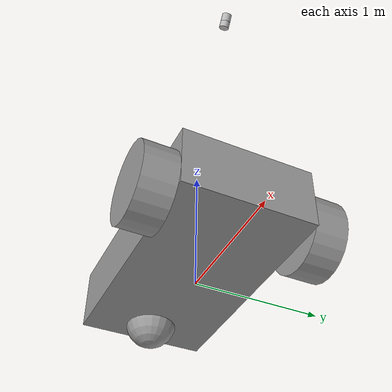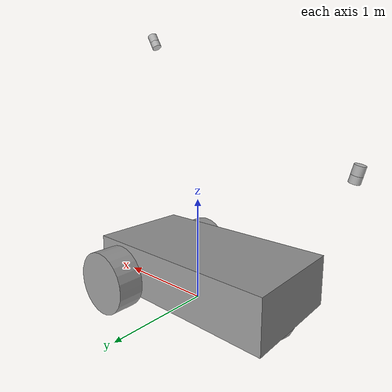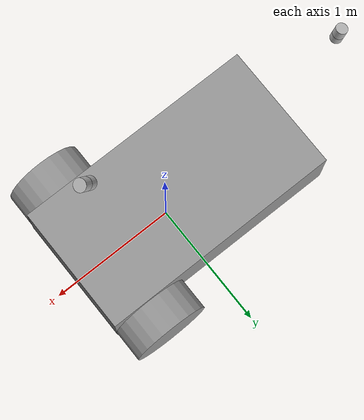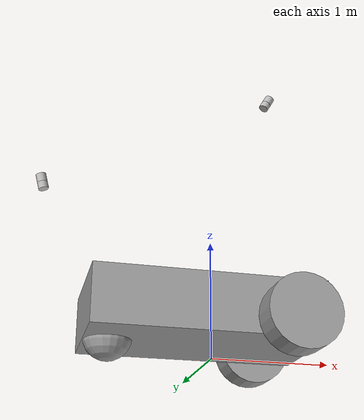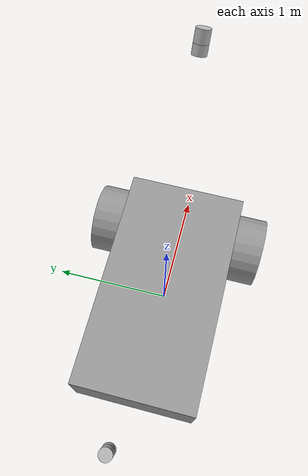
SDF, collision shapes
<?xml version='1.0'?>
<sdf version='1.7'>
  <model name='teste'>
    <link name='link_0'>
      <inertial>
        <mass>0.895719</mass>
        <inertia>
          <ixx>0.0913288</ixx>
          <ixy>0</ixy>
          <ixz>0</ixz>
          <iyy>0.284552</iyy>
          <iyz>0</iyz>
          <izz>0.34251</izz>
        </inertia>
        <pose>0 0 0 0 -0 0</pose>
      </inertial>
      <pose>-0.105458 0.002643 0.335385 0 -0 0</pose>
      <gravity>1</gravity>
      <self_collide>0</self_collide>
      <kinematic>0</kinematic>
      <enable_wind>0</enable_wind>
      <visual name='visual'>
        <pose>0 0 0 0 -0 0</pose>
        <geometry>
          <box>
            <size>1.89437 1 0.472797</size>
          </box>
        </geometry>
        <material>
          <lighting>1</lighting>
          <script>
            <uri>file://media/materials/scripts/gazebo.material</uri>
            <name>Gazebo/Grey</name>
          </script>
          <shader type='pixel'>
            <normal_map>__default__</normal_map>
          </shader>
          <ambient>0.3 0.3 0.3 1</ambient>
          <diffuse>0.7 0.7 0.7 1</diffuse>
          <specular>0.01 0.01 0.01 1</specular>
          <emissive>0 0 0 1</emissive>
        </material>
        <transparency>0</transparency>
        <cast_shadows>1</cast_shadows>
      </visual>
      <collision name='collision'>
        <laser_retro>0</laser_retro>
        <max_contacts>10</max_contacts>
        <pose>0 0 0 0 -0 0</pose>
        <geometry>
          <box>
            <size>1.89437 1 0.472797</size>
          </box>
        </geometry>
        <surface>
          <friction>
            <ode>
              <mu>1</mu>
              <mu2>1</mu2>
              <fdir1>0 0 0</fdir1>
              <slip1>0</slip1>
              <slip2>0</slip2>
            </ode>
            <torsional>
              <coefficient>1</coefficient>
              <patch_radius>0</patch_radius>
              <surface_radius>0</surface_radius>
              <use_patch_radius>1</use_patch_radius>
              <ode>
                <slip>0</slip>
              </ode>
            </torsional>
          </friction>
          <bounce>
            <restitution_coefficient>0</restitution_coefficient>
            <threshold>1e+06</threshold>
          </bounce>
          <contact>
            <collide_without_contact>0</collide_without_contact>
            <collide_without_contact_bitmask>1</collide_without_contact_bitmask>
            <collide_bitmask>1</collide_bitmask>
            <ode>
              <soft_cfm>0</soft_cfm>
              <soft_erp>0.2</soft_erp>
              <kp>1e+13</kp>
              <kd>1</kd>
              <max_vel>0.01</max_vel>
              <min_depth>0</min_depth>
            </ode>
            <bullet>
              <split_impulse>1</split_impulse>
              <split_impulse_penetration_threshold>-0.01</split_impulse_penetration_threshold>
              <soft_cfm>0</soft_cfm>
              <soft_erp>0.2</soft_erp>
              <kp>1e+13</kp>
              <kd>1</kd>
            </bullet>
          </contact>
        </surface>
      </collision>
    </link>
    <link name='link_1'>
      <inertial>
        <mass>1</mass>
        <inertia>
          <ixx>0.145833</ixx>
          <ixy>0</ixy>
          <ixz>0</ixz>
          <iyy>0.145833</iyy>
          <iyz>0</iyz>
          <izz>0.125</izz>
        </inertia>
        <pose>0 0 0 0 -0 0</pose>
      </inertial>
      <pose>0.541725 -0.622386 0.235385 1.5707 -0 0</pose>
      <gravity>1</gravity>
      <self_collide>0</self_collide>
      <kinematic>0</kinematic>
      <enable_wind>0</enable_wind>
      <visual name='visual'>
        <pose>0 0 0 0 -0 0</pose>
        <geometry>
          <cylinder>
            <radius>0.3</radius>
            <length>0.25</length>
          </cylinder>
        </geometry>
        <material>
          <lighting>1</lighting>
          <script>
            <uri>file://media/materials/scripts/gazebo.material</uri>
            <name>Gazebo/Grey</name>
          </script>
          <shader type='pixel'>
            <normal_map>__default__</normal_map>
          </shader>
          <ambient>0.3 0.3 0.3 1</ambient>
          <diffuse>0.7 0.7 0.7 1</diffuse>
          <specular>0.01 0.01 0.01 1</specular>
          <emissive>0 0 0 1</emissive>
        </material>
        <transparency>0</transparency>
        <cast_shadows>1</cast_shadows>
      </visual>
      <collision name='collision'>
        <laser_retro>0</laser_retro>
        <max_contacts>10</max_contacts>
        <pose>0 0 0 0 -0 0</pose>
        <geometry>
          <cylinder>
            <radius>0.3</radius>
            <length>0.25</length>
          </cylinder>
        </geometry>
        <surface>
          <friction>
            <ode>
              <mu>1</mu>
              <mu2>1</mu2>
              <fdir1>0 0 0</fdir1>
              <slip1>0</slip1>
              <slip2>0</slip2>
            </ode>
            <torsional>
              <coefficient>1</coefficient>
              <patch_radius>0</patch_radius>
              <surface_radius>0</surface_radius>
              <use_patch_radius>1</use_patch_radius>
              <ode>
                <slip>0</slip>
              </ode>
            </torsional>
          </friction>
          <bounce>
            <restitution_coefficient>0</restitution_coefficient>
            <threshold>1e+06</threshold>
          </bounce>
          <contact>
            <collide_without_contact>0</collide_without_contact>
            <collide_without_contact_bitmask>1</collide_without_contact_bitmask>
            <collide_bitmask>1</collide_bitmask>
            <ode>
              <soft_cfm>0</soft_cfm>
              <soft_erp>0.2</soft_erp>
              <kp>1e+13</kp>
              <kd>1</kd>
              <max_vel>0.01</max_vel>
              <min_depth>0</min_depth>
            </ode>
            <bullet>
              <split_impulse>1</split_impulse>
              <split_impulse_penetration_threshold>-0.01</split_impulse_penetration_threshold>
              <soft_cfm>0</soft_cfm>
              <soft_erp>0.2</soft_erp>
              <kp>1e+13</kp>
              <kd>1</kd>
            </bullet>
          </contact>
        </surface>
      </collision>
    </link>
    <link name='link_1_clone'>
      <inertial>
        <mass>1</mass>
        <inertia>
          <ixx>0.145833</ixx>
          <ixy>0</ixy>
          <ixz>0</ixz>
          <iyy>0.145833</iyy>
          <iyz>0</iyz>
          <izz>0.125</izz>
        </inertia>
        <pose>0 0 0 0 -0 0</pose>
      </inertial>
      <pose>0.541725 0.627672 0.235385 1.5707 -0 0</pose>
      <gravity>1</gravity>
      <self_collide>0</self_collide>
      <kinematic>0</kinematic>
      <enable_wind>0</enable_wind>
      <visual name='visual'>
        <pose>0 0 0 0 -0 0</pose>
        <geometry>
          <cylinder>
            <radius>0.3</radius>
            <length>0.25</length>
          </cylinder>
        </geometry>
        <material>
          <lighting>1</lighting>
          <script>
            <uri>file://media/materials/scripts/gazebo.material</uri>
            <name>Gazebo/Grey</name>
          </script>
          <shader type='pixel'>
            <normal_map>__default__</normal_map>
          </shader>
          <ambient>0.3 0.3 0.3 1</ambient>
          <diffuse>0.7 0.7 0.7 1</diffuse>
          <specular>0.01 0.01 0.01 1</specular>
          <emissive>0 0 0 1</emissive>
        </material>
        <transparency>0</transparency>
        <cast_shadows>1</cast_shadows>
      </visual>
      <collision name='collision'>
        <laser_retro>0</laser_retro>
        <max_contacts>10</max_contacts>
        <pose>0 0 0 0 -0 0</pose>
        <geometry>
          <cylinder>
            <radius>0.3</radius>
            <length>0.25</length>
          </cylinder>
        </geometry>
        <surface>
          <friction>
            <ode>
              <mu>1</mu>
              <mu2>1</mu2>
              <fdir1>0 0 0</fdir1>
              <slip1>0</slip1>
              <slip2>0</slip2>
            </ode>
            <torsional>
              <coefficient>1</coefficient>
              <patch_radius>0</patch_radius>
              <surface_radius>0</surface_radius>
              <use_patch_radius>1</use_patch_radius>
              <ode>
                <slip>0</slip>
              </ode>
            </torsional>
          </friction>
          <bounce>
            <restitution_coefficient>0</restitution_coefficient>
            <threshold>1e+06</threshold>
          </bounce>
          <contact>
            <collide_without_contact>0</collide_without_contact>
            <collide_without_contact_bitmask>1</collide_without_contact_bitmask>
            <collide_bitmask>1</collide_bitmask>
            <ode>
              <soft_cfm>0</soft_cfm>
              <soft_erp>0.2</soft_erp>
              <kp>1e+13</kp>
              <kd>1</kd>
              <max_vel>0.01</max_vel>
              <min_depth>0</min_depth>
            </ode>
            <bullet>
              <split_impulse>1</split_impulse>
              <split_impulse_penetration_threshold>-0.01</split_impulse_penetration_threshold>
              <soft_cfm>0</soft_cfm>
              <soft_erp>0.2</soft_erp>
              <kp>1e+13</kp>
              <kd>1</kd>
            </bullet>
          </contact>
        </surface>
      </collision>
    </link>
    <link name='link_2'>
      <inertial>
        <mass>1</mass>
        <inertia>
          <ixx>0.1</ixx>
          <ixy>0</ixy>
          <ixz>0</ixz>
          <iyy>0.1</iyy>
          <iyz>0</iyz>
          <izz>0.1</izz>
        </inertia>
        <pose>0 0 0 0 -0 0</pose>
      </inertial>
      <pose>-0.852641 0.002643 0.135385 0 -0 0</pose>
      <gravity>1</gravity>
      <self_collide>0</self_collide>
      <kinematic>0</kinematic>
      <enable_wind>0</enable_wind>
      <visual name='visual'>
        <pose>0 0 0 0 -0 0</pose>
        <geometry>
          <sphere>
            <radius>0.2</radius>
          </sphere>
        </geometry>
        <material>
          <lighting>1</lighting>
          <script>
            <uri>file://media/materials/scripts/gazebo.material</uri>
            <name>Gazebo/Grey</name>
          </script>
          <shader type='pixel'>
            <normal_map>__default__</normal_map>
          </shader>
          <ambient>0.3 0.3 0.3 1</ambient>
          <diffuse>0.7 0.7 0.7 1</diffuse>
          <specular>0.01 0.01 0.01 1</specular>
          <emissive>0 0 0 1</emissive>
        </material>
        <transparency>0</transparency>
        <cast_shadows>1</cast_shadows>
      </visual>
      <collision name='collision'>
        <laser_retro>0</laser_retro>
        <max_contacts>10</max_contacts>
        <pose>0 0 0 0 -0 0</pose>
        <geometry>
          <sphere>
            <radius>0.2</radius>
          </sphere>
        </geometry>
        <surface>
          <friction>
            <ode>
              <mu>1</mu>
              <mu2>1</mu2>
              <fdir1>0 0 0</fdir1>
              <slip1>0</slip1>
              <slip2>0</slip2>
            </ode>
            <torsional>
              <coefficient>1</coefficient>
              <patch_radius>0</patch_radius>
              <surface_radius>0</surface_radius>
              <use_patch_radius>1</use_patch_radius>
              <ode>
                <slip>0</slip>
              </ode>
            </torsional>
          </friction>
          <bounce>
            <restitution_coefficient>0</restitution_coefficient>
            <threshold>1e+06</threshold>
          </bounce>
          <contact>
            <collide_without_contact>0</collide_without_contact>
            <collide_without_contact_bitmask>1</collide_without_contact_bitmask>
            <collide_bitmask>1</collide_bitmask>
            <ode>
              <soft_cfm>0</soft_cfm>
              <soft_erp>0.2</soft_erp>
              <kp>1e+13</kp>
              <kd>1</kd>
              <max_vel>0.01</max_vel>
              <min_depth>0</min_depth>
            </ode>
            <bullet>
              <split_impulse>1</split_impulse>
              <split_impulse_penetration_threshold>-0.01</split_impulse_penetration_threshold>
              <soft_cfm>0</soft_cfm>
              <soft_erp>0.2</soft_erp>
              <kp>1e+13</kp>
              <kd>1</kd>
            </bullet>
          </contact>
        </surface>
      </collision>
    </link>
    <model name='my_velodyne'>
      <frame name='velodyne::__model__' attached_to='velodyne::base'>
        <pose relative_to='__model__'>0.5275 0.001 2.419 0 0.52 0</pose>
      </frame>
      <link name='velodyne::base'>
        <pose>0.542076 0.001 2.44446 0 0.52 0</pose>
        <inertial>
          <mass>1.2</mass>
          <inertia>
            <ixx>0.00108747</ixx>
            <iyy>0.00108747</iyy>
            <izz>0.00109244</izz>
            <ixy>0</ixy>
            <ixz>0</ixz>
            <iyz>0</iyz>
          </inertia>
          <pose>0 0 0 0 -0 0</pose>
        </inertial>
        <collision name='base_collision'>
          <geometry>
            <cylinder>
              <radius>0.04267</radius>
              <length>0.05867</length>
            </cylinder>
          </geometry>
          <max_contacts>10</max_contacts>
          <surface>
            <contact>
              <ode/>
            </contact>
            <bounce/>
            <friction>
              <torsional>
                <ode/>
              </torsional>
              <ode/>
            </friction>
          </surface>
        </collision>
        <visual name='base_visual'>
          <pose>0 0 -0.029335 0 -0 0</pose>
          <geometry>
            <mesh>
              <uri>model://velodyne_hdl32/meshes/velodyne_base.dae</uri>
            </mesh>
          </geometry>
        </visual>
        <kinematic>1</kinematic>
        <self_collide>0</self_collide>
        <enable_wind>0</enable_wind>
      </link>
      <link name='velodyne::top'>
        <pose>0.57493 0.001 2.50184 0 0.52 0</pose>
        <inertial>
          <mass>0.1</mass>
          <inertia>
            <ixx>9.0623e-05</ixx>
            <iyy>9.0623e-05</iyy>
            <izz>9.1036e-05</izz>
            <ixy>0</ixy>
            <ixz>0</ixz>
            <iyz>0</iyz>
          </inertia>
          <pose>0 0 0 0 -0 0</pose>
        </inertial>
        <collision name='top_collision'>
          <geometry>
            <cylinder>
              <radius>0.04267</radius>
              <length>0.07357</length>
            </cylinder>
          </geometry>
          <max_contacts>10</max_contacts>
          <surface>
            <contact>
              <ode/>
            </contact>
            <bounce/>
            <friction>
              <torsional>
                <ode/>
              </torsional>
              <ode/>
            </friction>
          </surface>
        </collision>
        <visual name='top_visual'>
          <pose>0 0 -0.037679 0 -0 1.5707</pose>
          <geometry>
            <mesh>
              <uri>model://velodyne_hdl32/meshes/velodyne_top.dae</uri>
            </mesh>
          </geometry>
        </visual>
        <sensor name='sensor' type='ray'>
          <pose>0 0 -0.004645 1.5707 -0 0</pose>
          <visualize>1</visualize>
          <update_rate>30</update_rate>
          <ray>
            <noise>
              <type>gaussian</type>
              <mean>0</mean>
              <stddev>0.02</stddev>
            </noise>
            <scan>
              <horizontal>
                <samples>16</samples>
                <resolution>1</resolution>
                <min_angle>-0.535292</min_angle>
                <max_angle>0.186227</max_angle>
              </horizontal>
              <vertical>
                <samples>1</samples>
                <min_angle>0</min_angle>
                <max_angle>0</max_angle>
              </vertical>
            </scan>
            <range>
              <min>0.1</min>
              <max>70</max>
              <resolution>0.02</resolution>
            </range>
          </ray>
        </sensor>
        <self_collide>0</self_collide>
        <enable_wind>0</enable_wind>
        <kinematic>0</kinematic>
      </link>
      <joint name='velodyne::joint' type='revolute'>
        <pose>0 0 -0.036785 0 -0 0</pose>
        <parent>velodyne::base</parent>
        <child>velodyne::top</child>
        <axis>
          <xyz>0 0 1</xyz>
          <limit>
            <lower>-1e+16</lower>
            <upper>1e+16</upper>
          </limit>
          <dynamics>
            <spring_reference>0</spring_reference>
            <spring_stiffness>0</spring_stiffness>
          </dynamics>
        </axis>
      </joint>
      <plugin name='velodyne_control' filename='libvelodyne_plugin.so'>
        <velocity>25</velocity>
      </plugin>
      <pose>0 0 0 0 -0 0</pose>
    </model>
    <model name='my_velodyne2'>
      <frame name='velodyne::__model__' attached_to='velodyne::base'>
        <pose relative_to='__model__'>-1.435 0 1.355 0 0.25 -3.14159</pose>
      </frame>
      <link name='velodyne::base'>
        <pose>-1.44226 -0 1.38342 0 0.25 -3.14159</pose>
        <inertial>
          <mass>1.2</mass>
          <inertia>
            <ixx>0.00108747</ixx>
            <iyy>0.00108747</iyy>
            <izz>0.00109244</izz>
            <ixy>0</ixy>
            <ixz>0</ixz>
            <iyz>0</iyz>
          </inertia>
          <pose>0 0 0 0 -0 0</pose>
        </inertial>
        <collision name='base_collision'>
          <geometry>
            <cylinder>
              <radius>0.04267</radius>
              <length>0.05867</length>
            </cylinder>
          </geometry>
          <max_contacts>10</max_contacts>
          <surface>
            <contact>
              <ode/>
            </contact>
            <bounce/>
            <friction>
              <torsional>
                <ode/>
              </torsional>
              <ode/>
            </friction>
          </surface>
        </collision>
        <visual name='base_visual'>
          <pose>0 0 -0.029335 0 -0 0</pose>
          <geometry>
            <mesh>
              <uri>model://velodyne_hdl32/meshes/velodyne_base.dae</uri>
            </mesh>
          </geometry>
        </visual>
        <kinematic>1</kinematic>
        <self_collide>0</self_collide>
        <enable_wind>0</enable_wind>
      </link>
      <link name='velodyne::top'>
        <pose>-1.45862 -0 1.44749 0 0.25 -3.14159</pose>
        <inertial>
          <mass>0.1</mass>
          <inertia>
            <ixx>9.0623e-05</ixx>
            <iyy>9.0623e-05</iyy>
            <izz>9.1036e-05</izz>
            <ixy>0</ixy>
            <ixz>0</ixz>
            <iyz>0</iyz>
          </inertia>
          <pose>0 0 0 0 -0 0</pose>
        </inertial>
        <collision name='top_collision'>
          <geometry>
            <cylinder>
              <radius>0.04267</radius>
              <length>0.07357</length>
            </cylinder>
          </geometry>
          <max_contacts>10</max_contacts>
          <surface>
            <contact>
              <ode/>
            </contact>
            <bounce/>
            <friction>
              <torsional>
                <ode/>
              </torsional>
              <ode/>
            </friction>
          </surface>
        </collision>
        <visual name='top_visual'>
          <pose>0 0 -0.037679 0 -0 1.5707</pose>
          <geometry>
            <mesh>
              <uri>model://velodyne_hdl32/meshes/velodyne_top.dae</uri>
            </mesh>
          </geometry>
        </visual>
        <sensor name='sensor' type='ray'>
          <pose>0 0 -0.004645 1.5707 -0 0</pose>
          <visualize>1</visualize>
          <update_rate>30</update_rate>
          <ray>
            <noise>
              <type>gaussian</type>
              <mean>0</mean>
              <stddev>0.02</stddev>
            </noise>
            <scan>
              <horizontal>
                <samples>16</samples>
                <resolution>1</resolution>
                <min_angle>-0.535292</min_angle>
                <max_angle>0.186227</max_angle>
              </horizontal>
              <vertical>
                <samples>1</samples>
                <min_angle>0</min_angle>
                <max_angle>0</max_angle>
              </vertical>
            </scan>
            <range>
              <min>0.1</min>
              <max>70</max>
              <resolution>0.02</resolution>
            </range>
          </ray>
        </sensor>
        <self_collide>0</self_collide>
        <enable_wind>0</enable_wind>
        <kinematic>0</kinematic>
      </link>
      <joint name='velodyne::joint' type='revolute'>
        <pose>0 0 -0.036785 0 -0 0</pose>
        <parent>velodyne::base</parent>
        <child>velodyne::top</child>
        <axis>
          <xyz>0 0 1</xyz>
          <limit>
            <lower>-1e+16</lower>
            <upper>1e+16</upper>
          </limit>
          <dynamics>
            <spring_reference>0</spring_reference>
            <spring_stiffness>0</spring_stiffness>
          </dynamics>
        </axis>
      </joint>
      <plugin name='velodyne_control' filename='libvelodyne_plugin.so'>
        <velocity>25</velocity>
      </plugin>
      <pose>0 0 0 0 -0 0</pose>
    </model>
    <joint name='link_0_JOINT_0_0' type='revolute'>
      <parent>link_0</parent>
      <child>my_velodyne2::velodyne::base</child>
      <pose>0 0 0 0 -0 0</pose>
      <axis>
        <xyz>1 0 0</xyz>
        <limit>
          <lower>-1.79769e+308</lower>
          <upper>1.79769e+308</upper>
          <effort>-1</effort>
          <velocity>-1</velocity>
        </limit>
        <dynamics>
          <spring_reference>0</spring_reference>
          <spring_stiffness>0</spring_stiffness>
          <damping>0</damping>
        </dynamics>
      </axis>
      <physics>
        <ode>
          <limit>
            <cfm>0</cfm>
            <erp>0.2</erp>
          </limit>
          <suspension>
            <cfm>0</cfm>
            <erp>0.2</erp>
          </suspension>
        </ode>
      </physics>
    </joint>
    <joint name='link_0_JOINT_0' type='revolute'>
      <parent>link_0</parent>
      <child>link_1_clone</child>
      <pose>0 0 0 0 -0 0</pose>
      <axis>
        <xyz>0 0 1</xyz>
        <limit>
          <lower>-1.79769e+308</lower>
          <upper>1.79769e+308</upper>
          <effort>-1</effort>
          <velocity>-1</velocity>
        </limit>
        <dynamics>
          <spring_reference>0</spring_reference>
          <spring_stiffness>0</spring_stiffness>
          <damping>0</damping>
          <friction>0</friction>
        </dynamics>
      </axis>
      <physics>
        <ode>
          <limit>
            <cfm>0</cfm>
            <erp>0.2</erp>
          </limit>
          <suspension>
            <cfm>0</cfm>
            <erp>0.2</erp>
          </suspension>
        </ode>
      </physics>
    </joint>
    <joint name='link_0_JOINT_1_0' type='revolute'>
      <parent>link_0</parent>
      <child>my_velodyne::velodyne::base</child>
      <pose>0 0 0 0 -0 0</pose>
      <axis>
        <xyz>1 0 0</xyz>
        <limit>
          <lower>-1.79769e+308</lower>
          <upper>1.79769e+308</upper>
          <effort>-1</effort>
          <velocity>-1</velocity>
        </limit>
        <dynamics>
          <spring_reference>0</spring_reference>
          <spring_stiffness>0</spring_stiffness>
          <damping>0</damping>
        </dynamics>
      </axis>
      <physics>
        <ode>
          <limit>
            <cfm>0</cfm>
            <erp>0.2</erp>
          </limit>
          <suspension>
            <cfm>0</cfm>
            <erp>0.2</erp>
          </suspension>
        </ode>
      </physics>
    </joint>
    <joint name='link_0_JOINT_1' type='revolute'>
      <parent>link_0</parent>
      <child>link_1</child>
      <pose>0 0 0 0 -0 0</pose>
      <axis>
        <xyz>0 0 1</xyz>
        <limit>
          <lower>-1.79769e+308</lower>
          <upper>1.79769e+308</upper>
          <effort>-1</effort>
          <velocity>-1</velocity>
        </limit>
        <dynamics>
          <spring_reference>0</spring_reference>
          <spring_stiffness>0</spring_stiffness>
          <damping>0</damping>
          <friction>0</friction>
        </dynamics>
      </axis>
      <physics>
        <ode>
          <limit>
            <cfm>0</cfm>
            <erp>0.2</erp>
          </limit>
          <suspension>
            <cfm>0</cfm>
            <erp>0.2</erp>
          </suspension>
        </ode>
      </physics>
    </joint>
    <joint name='link_0_JOINT_2' type='ball'>
      <parent>link_0</parent>
      <child>link_2</child>
      <pose>0 0 0 0 -0 0</pose>
      <physics>
        <ode>
          <limit>
            <cfm>0</cfm>
            <erp>0.2</erp>
          </limit>
          <suspension>
            <cfm>0</cfm>
            <erp>0.2</erp>
          </suspension>
        </ode>
      </physics>
    </joint>
    <static>0</static>
    <allow_auto_disable>1</allow_auto_disable>
  </model>
</sdf>
